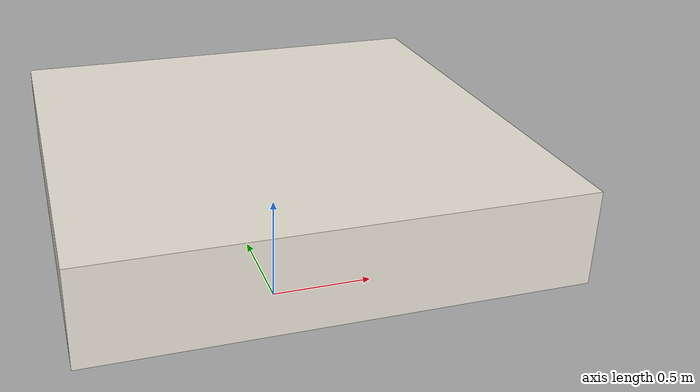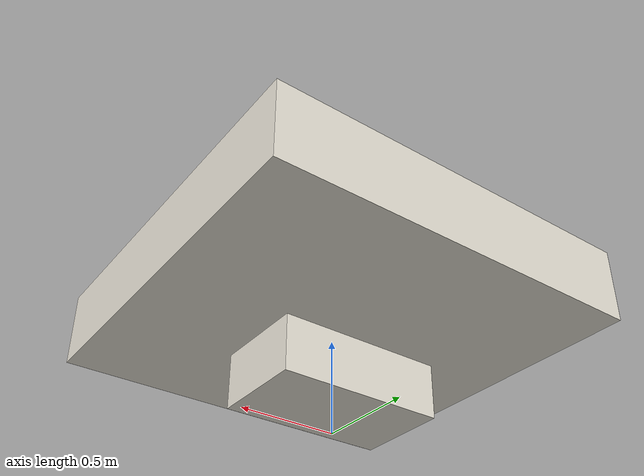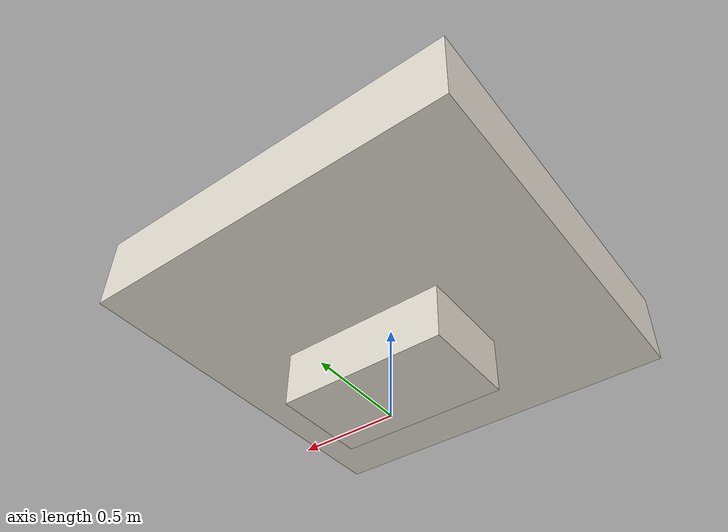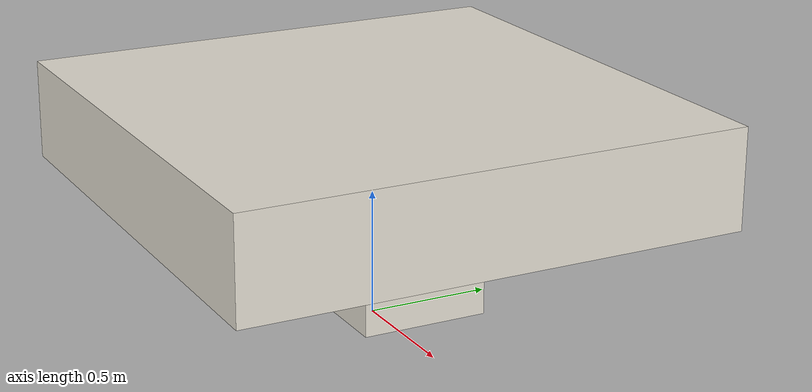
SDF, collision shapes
<?xml version="1.0" encoding="UTF-8"?>
<sdf version='1.9'>
  <model name='hb_3'>
    <pose>0 0 0.7 0 0 0</pose>
    <self_collide>false</self_collide>
    <static>false</static>
    <link name="base_link">
      <inertial>
        <mass>2.0</mass>
        <inertia>
          <ixx>0.02166666666666667</ixx>
          <ixy>0</ixy>
          <ixz>0</ixz>
          <iyy>0.02166666666666667</iyy>
          <iyz>0</iyz>
          <izz>0.04000000000000001</izz>
        </inertia>
      </inertial>
      <gravity>true</gravity>
      <velocity_decay/>
      <visual name="base_link_visual">
        <pose>0 0 0 0 0 0</pose>
        <geometry>
          <mesh>
            <scale>1 1 1</scale>
            <uri>model://hb_3/meshes/body.dae</uri>
          </mesh>
        </geometry>
        <material>
          <ambient>0.90 0.88 0.83 1</ambient>
          <diffuse>0.90 0.88 0.83 1</diffuse>
          <specular>0.04 0.04 0.04 1</specular>
          <roughness>0.6</roughness>
        </material>
      </visual>
      <visual name="base_stand">
        <pose>0 0 -0.45 0 0 0</pose>
        <geometry>
          <mesh>
            <scale>1 1 1</scale>
            <uri>model://hb_3/meshes/stand.dae</uri>
          </mesh>
        </geometry>
        <material>
          <ambient>0.40 0.48 0.43 1</ambient>
          <diffuse>0.40 0.48 0.43 1</diffuse>
          <specular>0.04 0.04 0.04 1</specular>
          <roughness>0.6</roughness>
        </material>
      </visual>
      <visual name="5010_motor_base_0">
        <pose>0.45 0.45 .010 0 0 -.45</pose>
        <geometry>
          <mesh>
            <scale>1 1 1</scale>
            <uri>model://hb_3/meshes/5010Base.dae</uri>
          </mesh>
        </geometry>
      </visual>
      <visual name="5010_motor_base_1">
        <pose>-0.45 0.45 .010 0 0 -.45</pose>
        <geometry>
          <mesh>
            <scale>1 1 1</scale>
            <uri>model://hb_3/meshes/5010Base.dae</uri>
          </mesh>
        </geometry>
      </visual>
      <visual name="5010_motor_base_2">
        <pose>0.45 -0.45 .010 0 0 -.45</pose>
        <geometry>
          <mesh>
            <scale>1 1 1</scale>
            <uri>model://hb_3/meshes/5010Base.dae</uri>
          </mesh>
        </geometry>
      </visual>
      <visual name="5010_motor_base_3">
        <pose>-0.45 -0.45 .010 0 0 -.45</pose>
        <geometry>
          <mesh>
            <scale>1 1 1</scale>
            <uri>model://hb_3/meshes/5010Base.dae</uri>
          </mesh>
        </geometry>
      </visual>
      <collision name="base_link_collision_0">
        <pose>0 0 0 0 0 0</pose>
        <geometry>
          <box>
            <size>2 2 0.4</size>
          </box>
        </geometry>
        <surface>
          <contact>
            <ode>
              <min_depth>0.001</min_depth>
              <max_vel>0</max_vel>
            </ode>
          </contact>
          <friction>
            <ode/>
          </friction>
        </surface>
      </collision>
      <collision name="base_link_collision_1">
        <pose>0 0 -0.45 0 0 0</pose>
        <geometry>
          <box>
            <size>0.870 0.500 0.287</size>
          </box>
        </geometry>
        <surface>
          <contact>
            <ode>
              <min_depth>0.001</min_depth>
              <max_vel>0</max_vel>
            </ode>
          </contact>
          <friction>
            <ode/>
          </friction>
        </surface>
      </collision>
      <sensor name="air_pressure_sensor" type="air_pressure">
        <always_on>1</always_on>
        <update_rate>50</update_rate>
        <air_pressure>
          <!-- Noise modeled after BMP390 -->
          <pressure>
            <noise type="gaussian">
              <mean>0</mean>
              <stddev>3</stddev>
            </noise>
          </pressure>
        </air_pressure>
      </sensor>
      <sensor name="magnetometer_sensor" type="magnetometer">
        <always_on>1</always_on>
        <update_rate>100</update_rate>
        <magnetometer>
          <!-- TODO: update to fix units and coordinate system when we move past Harmonic -->
          <!-- See https://github.com/gazebosim/gz-sim/pull/2460 -->
          <!-- 3mgauss RMS: NOTE: noise is in tesla but sensor reports data in gauss -->
          <!-- Noise modeled after IIS2MDC -->
          <x>
            <noise type="gaussian">
              <stddev>0.0001</stddev>
            </noise>
          </x>
          <y>
            <noise type="gaussian">
              <stddev>0.0001</stddev>
            </noise>
          </y>
          <z>
            <noise type="gaussian">
              <stddev>0.0001</stddev>
            </noise>
          </z>
        </magnetometer>
      </sensor>
      <sensor name="imu_sensor" type="imu">
        <always_on>1</always_on>
        <update_rate>250</update_rate>
        <imu>
          <angular_velocity>
            <!-- Noise modeled after IIM42653 -->
            <!-- 0.05 deg/s converted to rad/s -->
            <x>
              <noise type="gaussian">
                <mean>0.0</mean>
                <stddev>0.0008726646</stddev>
              </noise>
            </x>
            <y>
              <noise type="gaussian">
                <mean>0.0</mean>
                <stddev>0.0008726646</stddev>
              </noise>
            </y>
            <z>
              <noise type="gaussian">
                <mean>0.0</mean>
                <stddev>0.0008726646</stddev>
              </noise>
            </z>
          </angular_velocity>
          <linear_acceleration>
            <!-- Noise modeled after IIM42653 -->
            <!-- X & Y axis: 0.65 mg-rms converted to m/ss -->
            <x>
              <noise type="gaussian">
                <mean>0.0</mean>
                <stddev>0.00637</stddev>
              </noise>
            </x>
            <y>
              <noise type="gaussian">
                <mean>0.0</mean>
                <stddev>0.00637</stddev>
              </noise>
            </y>
            <!-- Z axis: 0.70 mg-rms converted to m/ss-->
            <z>
              <noise type="gaussian">
                <mean>0.0</mean>
                <stddev>0.00686</stddev>
              </noise>
            </z>
          </linear_acceleration>
        </imu>
      </sensor>
      <sensor name="navsat_sensor" type="navsat">
        <always_on>1</always_on>
        <update_rate>30</update_rate>
      </sensor>
    </link>
    <link name="rotor_0">
      <gravity>true</gravity>
      <self_collide>false</self_collide>
      <velocity_decay/>
      <pose>0.45 -0.45 0.038 0 0 0</pose>
      <inertial>
        <mass>0.016076923076923075</mass>
        <inertia>
          <ixx>3.8464910483993325e-07</ixx>
          <iyy>2.6115851691700804e-05</iyy>
          <izz>2.649858234714004e-05</izz>
        </inertia>
      </inertial>
      <visual name="rotor_0_visual">
        <pose>-0.026 -0.173 -0.016 0 0 0</pose>
        <geometry>
          <mesh>
            <scale>1 1 1</scale>
            <uri>model://hb_3/meshes/1345_prop_ccw.stl</uri>
          </mesh>
        </geometry>
        <material>
          <script>
            <name>Gazebo/DarkGrey</name>
            <uri>file://media/materials/scripts/gazebo.material</uri>
          </script>
        </material>
      </visual>
      <visual name="rotor_0_visual_motor_bell">
        <pose>0 0 -.032 0 0 0</pose>
        <geometry>
          <mesh>
            <scale>1 1 1</scale>
            <uri>model://hb_3/meshes/5010Bell.dae</uri>
          </mesh>
        </geometry>
      </visual>
      <collision name="rotor_0_collision">
        <pose>0 0 0 0 0 0 </pose>
        <geometry>
          <box>
            <size>0.2792307692307692 0.016923076923076923 0.0008461538461538462</size>
          </box>
        </geometry>
        <surface>
          <contact>
            <ode>
              <min_depth>0.001</min_depth>
              <max_vel>0</max_vel>
            </ode>
          </contact>
          <friction>
            <ode/>
          </friction>
        </surface>
      </collision>
    </link>
    <joint name="rotor_0_joint" type="revolute">
      <parent>base_link</parent>
      <child>rotor_0</child>
      <axis>
        <xyz>0 0 1</xyz>
        <limit>
          <lower>-1e+16</lower>
          <upper>1e+16</upper>
        </limit>
        <dynamics>
          <spring_reference>0</spring_reference>
          <spring_stiffness>0</spring_stiffness>
        </dynamics>
      </axis>
    </joint>
    <link name="rotor_1">
      <gravity>true</gravity>
      <self_collide>false</self_collide>
      <velocity_decay/>
      <pose>-0.45 0.45 0.038 0 0 0</pose>
      <inertial>
        <mass>0.016076923076923075</mass>
        <inertia>
          <ixx>3.8464910483993325e-07</ixx>
          <iyy>2.6115851691700804e-05</iyy>
          <izz>2.649858234714004e-05</izz>
        </inertia>
      </inertial>
      <visual name="rotor_1_visual">
        <pose>-0.026 -0.173 -0.016 0 0 0</pose>
        <geometry>
          <mesh>
            <scale>1 1 1</scale>
            <uri>model://hb_3/meshes/1345_prop_ccw.stl</uri>
          </mesh>
        </geometry>
        <material>
          <script>
            <name>Gazebo/DarkGrey</name>
            <uri>file://media/materials/scripts/gazebo.material</uri>
          </script>
        </material>
      </visual>
      <visual name="rotor_1_visual_motor_top">
        <pose>0 0 -.032 0 0 0</pose>
        <geometry>
          <mesh>
            <scale>1 1 1</scale>
            <uri>model://hb_3/meshes/5010Bell.dae</uri>
          </mesh>
        </geometry>
      </visual>
      <collision name="rotor_1_collision">
        <pose>0 0 0 0 0 0 </pose>
        <geometry>
          <box>
            <size>0.2792307692307692 0.016923076923076923 0.0008461538461538462</size>
          </box>
        </geometry>
        <surface>
          <contact>
            <ode>
              <min_depth>0.001</min_depth>
              <max_vel>0</max_vel>
            </ode>
          </contact>
          <friction>
            <ode/>
          </friction>
        </surface>
      </collision>
    </link>
    <joint name="rotor_1_joint" type="revolute">
      <parent>base_link</parent>
      <child>rotor_1</child>
      <axis>
        <xyz>0 0 1</xyz>
        <limit>
          <lower>-1e+16</lower>
          <upper>1e+16</upper>
        </limit>
        <dynamics>
          <spring_reference>0</spring_reference>
          <spring_stiffness>0</spring_stiffness>
        </dynamics>
      </axis>
    </joint>
    <link name="rotor_2">
      <gravity>true</gravity>
      <self_collide>false</self_collide>
      <velocity_decay/>
      <pose>0.45 0.45 0.038 0 0 0</pose>
      <inertial>
        <mass>0.016076923076923075</mass>
        <inertia>
          <ixx>3.8464910483993325e-07</ixx>
          <iyy>2.6115851691700804e-05</iyy>
          <izz>2.649858234714004e-05</izz>
        </inertia>
      </inertial>
      <visual name="rotor_2_visual">
        <pose>-0.026 -0.173 -0.016 0 0 0</pose>
        <geometry>
          <mesh>
            <scale>1 1 1</scale>
            <uri>model://hb_3/meshes/1345_prop_cw.stl</uri>
          </mesh>
        </geometry>
        <material>
          <script>
            <name>Gazebo/DarkGrey</name>
            <uri>file://media/materials/scripts/gazebo.material</uri>
          </script>
        </material>
      </visual>
      <visual name="rotor_2_visual_motor_top">
        <pose>0 0 -.032 0 0 0</pose>
        <geometry>
          <mesh>
            <scale>1 1 1</scale>
            <uri>model://hb_3/meshes/5010Bell.dae</uri>
          </mesh>
        </geometry>
      </visual>
      <collision name="rotor_2_collision">
        <pose>0 0 0 0 0 0 </pose>
        <geometry>
          <box>
            <size>0.2792307692307692 0.016923076923076923 0.0008461538461538462</size>
          </box>
        </geometry>
        <surface>
          <contact>
            <ode>
              <min_depth>0.001</min_depth>
              <max_vel>0</max_vel>
            </ode>
          </contact>
          <friction>
            <ode/>
          </friction>
        </surface>
      </collision>
    </link>
    <joint name="rotor_2_joint" type="revolute">
      <parent>base_link</parent>
      <child>rotor_2</child>
      <axis>
        <xyz>0 0 1</xyz>
        <limit>
          <lower>-1e+16</lower>
          <upper>1e+16</upper>
        </limit>
        <dynamics>
          <spring_reference>0</spring_reference>
          <spring_stiffness>0</spring_stiffness>
        </dynamics>
      </axis>
    </joint>
    <link name="rotor_3">
      <gravity>true</gravity>
      <self_collide>false</self_collide>
      <velocity_decay/>
      <pose>-0.45 -0.45 0.038 0 0 0</pose>
      <inertial>
        <mass>0.016076923076923075</mass>
        <inertia>
          <ixx>3.8464910483993325e-07</ixx>
          <iyy>2.6115851691700804e-05</iyy>
          <izz>2.649858234714004e-05</izz>
        </inertia>
      </inertial>
      <visual name="rotor_3_visual">
        <pose>-0.026 -0.173 -0.016 0 0 0</pose>
        <geometry>
          <mesh>
            <scale>1 1 1</scale>
            <uri>model://hb_3/meshes/1345_prop_cw.stl</uri>
          </mesh>
        </geometry>
        <material>
          <script>
            <name>Gazebo/DarkGrey</name>
            <uri>file://media/materials/scripts/gazebo.material</uri>
          </script>
        </material>
      </visual>
      <visual name="rotor_3_visual_motor_top">
        <pose>0 0 -.032 0 0 0</pose>
        <geometry>
          <mesh>
            <scale>1 1 1</scale>
            <uri>model://hb_3/meshes/5010Bell.dae</uri>
          </mesh>
        </geometry>
      </visual>
      <collision name="rotor_3_collision">
        <pose>0 0 0 0 0 0 </pose>
        <geometry>
          <box>
            <size>0.2792307692307692 0.016923076923076923 0.0008461538461538462</size>
          </box>
        </geometry>
        <surface>
          <contact>
            <ode>
              <min_depth>0.001</min_depth>
              <max_vel>0</max_vel>
            </ode>
          </contact>
          <friction>
            <ode/>
          </friction>
        </surface>
      </collision>
    </link>
    <joint name="rotor_3_joint" type="revolute">
      <parent>base_link</parent>
      <child>rotor_3</child>
      <axis>
        <xyz>0 0 1</xyz>
        <limit>
          <lower>-1e+16</lower>
          <upper>1e+16</upper>
        </limit>
        <dynamics>
          <spring_reference>0</spring_reference>
          <spring_stiffness>0</spring_stiffness>
        </dynamics>
      </axis>
    </joint>

    <plugin filename="gz-sim-multicopter-motor-model-system" name="gz::sim::systems::MulticopterMotorModel">
      <jointName>rotor_0_joint</jointName>
      <linkName>rotor_0</linkName>
      <turningDirection>ccw</turningDirection>
      <timeConstantUp>0.0125</timeConstantUp>
      <timeConstantDown>0.025</timeConstantDown>
      <maxRotVelocity>1000.0</maxRotVelocity>
      <motorConstant>9.54858e-06</motorConstant>
      <momentConstant>0.016</momentConstant>
      <commandSubTopic>command/motor_speed</commandSubTopic>
      <motorNumber>0</motorNumber>
      <rotorDragCoefficient>8.06428e-05</rotorDragCoefficient>
      <rollingMomentCoefficient>1e-06</rollingMomentCoefficient>
      <rotorVelocitySlowdownSim>10</rotorVelocitySlowdownSim>
      <motorType>velocity</motorType>
    </plugin>
    <plugin filename="gz-sim-multicopter-motor-model-system" name="gz::sim::systems::MulticopterMotorModel">
      <jointName>rotor_1_joint</jointName>
      <linkName>rotor_1</linkName>
      <turningDirection>ccw</turningDirection>
      <timeConstantUp>0.0125</timeConstantUp>
      <timeConstantDown>0.025</timeConstantDown>
      <maxRotVelocity>1000.0</maxRotVelocity>
      <motorConstant>9.54858e-06</motorConstant>
      <momentConstant>0.016</momentConstant>
      <commandSubTopic>command/motor_speed</commandSubTopic>
      <motorNumber>1</motorNumber>
      <rotorDragCoefficient>8.06428e-05</rotorDragCoefficient>
      <rollingMomentCoefficient>1e-06</rollingMomentCoefficient>
      <rotorVelocitySlowdownSim>10</rotorVelocitySlowdownSim>
      <motorType>velocity</motorType>
    </plugin>
    <plugin filename="gz-sim-multicopter-motor-model-system" name="gz::sim::systems::MulticopterMotorModel">
      <jointName>rotor_2_joint</jointName>
      <linkName>rotor_2</linkName>
      <turningDirection>cw</turningDirection>
      <timeConstantUp>0.0125</timeConstantUp>
      <timeConstantDown>0.025</timeConstantDown>
      <maxRotVelocity>1000.0</maxRotVelocity>
      <motorConstant>9.54858e-06</motorConstant>
      <momentConstant>0.016</momentConstant>
      <commandSubTopic>command/motor_speed</commandSubTopic>
      <motorNumber>2</motorNumber>
      <rotorDragCoefficient>8.06428e-05</rotorDragCoefficient>
      <rollingMomentCoefficient>1e-06</rollingMomentCoefficient>
      <rotorVelocitySlowdownSim>10</rotorVelocitySlowdownSim>
      <motorType>velocity</motorType>
    </plugin>
    <plugin filename="gz-sim-multicopter-motor-model-system" name="gz::sim::systems::MulticopterMotorModel">
      <jointName>rotor_3_joint</jointName>
      <linkName>rotor_3</linkName>
      <turningDirection>cw</turningDirection>
      <timeConstantUp>0.0125</timeConstantUp>
      <timeConstantDown>0.025</timeConstantDown>
      <maxRotVelocity>1000.0</maxRotVelocity>
      <motorConstant>9.54858e-06</motorConstant>
      <momentConstant>0.016</momentConstant>
      <commandSubTopic>command/motor_speed</commandSubTopic>
      <motorNumber>3</motorNumber>
      <rotorDragCoefficient>8.06428e-05</rotorDragCoefficient>
      <rollingMomentCoefficient>1e-06</rollingMomentCoefficient>
      <rotorVelocitySlowdownSim>10</rotorVelocitySlowdownSim>
      <motorType>velocity</motorType>
    </plugin>
  </model>
</sdf>
